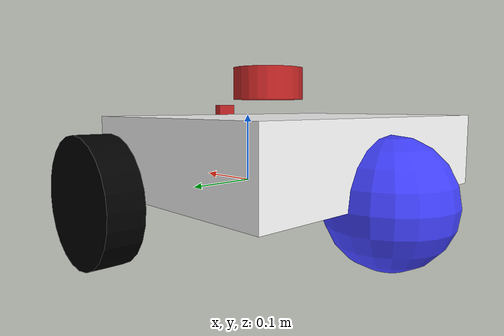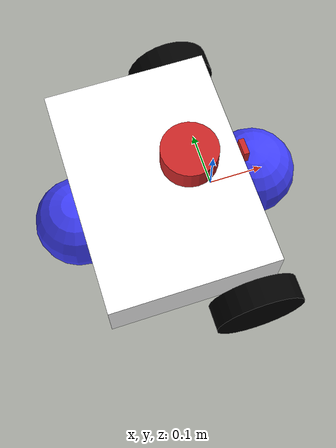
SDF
<sdf version='1.11'>
  <model name='robot'>
    <link name='botwheel'>
      <inertial>
        <pose>-0.089285714285714288 0 0.054047619047619053 0 0 0</pose>
        <mass>1.05</mass>
        <inertia>
          <ixx>0.01350925595238095</ixx>
          <ixy>0</ixy>
          <ixz>-0.00058821428571428479</ixz>
          <iyy>0.014536011904761909</iyy>
          <iyz>0</iyz>
          <izz>0.02150717261904762</izz>
        </inertia>
      </inertial>
      <collision name='botwheel_fixed_joint_lump__chassis_collision'>
        <pose>-0.099999999999999992 0 0.050000000000000003 0 0 0</pose>
        <geometry>
          <box>
            <size>0.29999999999999999 0.41499999999999998 0.10000000000000001</size>
          </box>
        </geometry>
      </collision>
      <collision name='botwheel_fixed_joint_lump__caster_wheel_collision_1'>
        <pose>-0.25 0 0 0 0 0</pose>
        <geometry>
          <sphere>
            <radius>0.080000000000000002</radius>
          </sphere>
        </geometry>
        <surface>
          <contact>
            <ode/>
          </contact>
          <friction>
            <ode>
              <mu>0.0001</mu>
              <mu2>0.0001</mu2>
            </ode>
          </friction>
        </surface>
      </collision>
      <collision name='botwheel_fixed_joint_lump__caster_wheel2_collision_2'>
        <pose>0.080000000000000002 0 0 0 0 0</pose>
        <geometry>
          <sphere>
            <radius>0.080000000000000002</radius>
          </sphere>
        </geometry>
        <surface>
          <contact>
            <ode/>
          </contact>
          <friction>
            <ode>
              <mu>0.0001</mu>
              <mu2>0.0001</mu2>
            </ode>
          </friction>
        </surface>
      </collision>
      <collision name='botwheel_fixed_joint_lump__laser_frame_collision_3'>
        <pose>-0.044999999999999998 0 0.14499999999999999 0 0 0</pose>
        <geometry>
          <cylinder>
            <length>0.044999999999999998</length>
            <radius>0.080000000000000002</radius>
          </cylinder>
        </geometry>
        <surface>
          <contact>
            <ode/>
          </contact>
          <friction>
            <ode/>
          </friction>
        </surface>
      </collision>
      <visual name='botwheel_fixed_joint_lump__chassis_visual'>
        <pose>-0.099999999999999992 0 0.050000000000000003 0 0 0</pose>
        <geometry>
          <box>
            <size>0.29999999999999999 0.41499999999999998 0.10000000000000001</size>
          </box>
        </geometry>
        <material>
          <diffuse>1 1 1 1</diffuse>
          <ambient>1 1 1 1</ambient>
        </material>
      </visual>
      <visual name='botwheel_fixed_joint_lump__camera_link_visual_1'>
        <pose>0.055 0 0.10000000000000001 0 0 0</pose>
        <geometry>
          <box>
            <size>0.01 0.029999999999999999 0.029999999999999999</size>
          </box>
        </geometry>
        <material>
          <script>
            <name>Gazebo/Red</name>
            <uri>file://media/materials/scripts/gazebo.material</uri>
          </script>
          <diffuse>1 0 0 1</diffuse>
          <ambient>1 0 0 1</ambient>
        </material>
      </visual>
      <visual name='botwheel_fixed_joint_lump__caster_wheel_visual_2'>
        <pose>-0.25 0 0 0 0 0</pose>
        <geometry>
          <sphere>
            <radius>0.080000000000000002</radius>
          </sphere>
        </geometry>
        <material>
          <diffuse>0.25 0.25 1 1</diffuse>
          <ambient>0.25 0.25 1 1</ambient>
        </material>
      </visual>
      <visual name='botwheel_fixed_joint_lump__caster_wheel2_visual_3'>
        <pose>0.080000000000000002 0 0 0 0 0</pose>
        <geometry>
          <sphere>
            <radius>0.080000000000000002</radius>
          </sphere>
        </geometry>
        <material>
          <diffuse>0.25 0.25 1 1</diffuse>
          <ambient>0.25 0.25 1 1</ambient>
        </material>
      </visual>
      <visual name='botwheel_fixed_joint_lump__laser_frame_visual_4'>
        <pose>-0.044999999999999998 0 0.14499999999999999 0 0 0</pose>
        <geometry>
          <cylinder>
            <length>0.044999999999999998</length>
            <radius>0.050000000000000003</radius>
          </cylinder>
        </geometry>
        <material>
          <script>
            <name>Gazebo/Red</name>
            <uri>file://media/materials/scripts/gazebo.material</uri>
          </script>
          <diffuse>1 0 0 1</diffuse>
          <ambient>1 0 0 1</ambient>
        </material>
      </visual>
      <sensor name='rgbd_camera' type='rgbd_camera'>
        <visualize>true</visualize>
        <update_rate>30</update_rate>
        <enable_metrics>true</enable_metrics>
        <camera>
          <horizontal_fov>1.089</horizontal_fov>
          <image>
            <format>R8G8B8</format>
            <width>640</width>
            <height>480</height>
          </image>
          <clip>
            <near>0.050000000000000003</near>
            <far>8</far>
          </clip>
        </camera>
        <topic>rgbd_camera</topic>
        <pose>0.055 0 0.10000000000000001 0 0 0</pose>
      </sensor>
      <sensor name='laser' type='gpu_lidar'>
        <topic>lidar</topic>
        <visualize>true</visualize>
        <update_rate>10</update_rate>
        <always_on>true</always_on>
        <ray>
          <scan>
            <horizontal>
              <samples>360</samples>
              <resolution>1</resolution>
              <min_angle>-3.1400000000000001</min_angle>
              <max_angle>3.1400000000000001</max_angle>
            </horizontal>
          </scan>
          <range>
            <min>0.29999999999999999</min>
            <max>12</max>
            <resolution>0.01</resolution>
          </range>
        </ray>
        <pose>-0.044999999999999998 0 0.14499999999999999 0 0 0</pose>
      </sensor>
    </link>
    <joint name='left_wheel_joint' type='revolute'>
      <pose relative_to='botwheel'>0 0.24249999999999999 0 -1.5707963267948959 0 0</pose>
      <parent>botwheel</parent>
      <child>left_wheel</child>
      <axis>
        <xyz>0 0 1</xyz>
        <limit>
          <lower>-inf</lower>
          <upper>inf</upper>
        </limit>
        <dynamics>
          <spring_reference>0</spring_reference>
          <spring_stiffness>0</spring_stiffness>
        </dynamics>
      </axis>
    </joint>
    <link name='left_wheel'>
      <pose relative_to='left_wheel_joint'>0 0 0 0 0 0</pose>
      <inertial>
        <pose>0 0 0 0 0 0</pose>
        <mass>0.14999999999999999</mass>
        <inertia>
          <ixx>0.00011375</ixx>
          <ixy>0</ixy>
          <ixz>0</ixz>
          <iyy>0.00011375</iyy>
          <iyz>0</iyz>
          <izz>0.0001875</izz>
        </inertia>
      </inertial>
      <collision name='left_wheel_collision'>
        <pose>0 0 0 0 0 0</pose>
        <geometry>
          <cylinder>
            <length>0.044999999999999998</length>
            <radius>0.080000000000000002</radius>
          </cylinder>
        </geometry>
      </collision>
      <visual name='left_wheel_visual'>
        <pose>0 0 0 0 0 0</pose>
        <geometry>
          <cylinder>
            <length>0.044999999999999998</length>
            <radius>0.080000000000000002</radius>
          </cylinder>
        </geometry>
        <material>
          <diffuse>0 0 0 1</diffuse>
          <ambient>0 0 0 1</ambient>
        </material>
      </visual>
    </link>
    <joint name='right_wheel_joint' type='revolute'>
      <pose relative_to='botwheel'>0 -0.24249999999999999 0 1.5707963267948959 0 0</pose>
      <parent>botwheel</parent>
      <child>right_wheel</child>
      <axis>
        <xyz>0 0 -1</xyz>
        <limit>
          <lower>-inf</lower>
          <upper>inf</upper>
        </limit>
        <dynamics>
          <spring_reference>0</spring_reference>
          <spring_stiffness>0</spring_stiffness>
        </dynamics>
      </axis>
    </joint>
    <link name='right_wheel'>
      <pose relative_to='right_wheel_joint'>0 0 0 0 0 0</pose>
      <inertial>
        <pose>0 0 0 0 0 0</pose>
        <mass>0.14999999999999999</mass>
        <inertia>
          <ixx>0.00011375</ixx>
          <ixy>0</ixy>
          <ixz>0</ixz>
          <iyy>0.00011375</iyy>
          <iyz>0</iyz>
          <izz>0.0001875</izz>
        </inertia>
      </inertial>
      <collision name='right_wheel_collision'>
        <pose>0 0 0 0 0 0</pose>
        <geometry>
          <cylinder>
            <length>0.044999999999999998</length>
            <radius>0.080000000000000002</radius>
          </cylinder>
        </geometry>
      </collision>
      <visual name='right_wheel_visual'>
        <pose>0 0 0 0 0 0</pose>
        <geometry>
          <cylinder>
            <length>0.044999999999999998</length>
            <radius>0.080000000000000002</radius>
          </cylinder>
        </geometry>
        <material>
          <diffuse>0 0 0 1</diffuse>
          <ambient>0 0 0 1</ambient>
        </material>
      </visual>
    </link>
    <plugin name='gz::sim::systems::DiffDrive' filename='gz-sim-diff-drive-system'>
      <alwaysOn>true</alwaysOn>
      <left_joint>left_wheel_joint</left_joint>
      <right_joint>right_wheel_joint</right_joint>
      <wheel_separation>0.4850</wheel_separation>
      <wheel_diameter>0.1</wheel_diameter>
      <max_wheel_torque>200</max_wheel_torque>
      <max_wheel_acceleration>10.0</max_wheel_acceleration>
      <topic>cmd_vel</topic>
      <robotBaseFrame>base_link</robotBaseFrame>
      <odom_publish_frequency>1</odom_publish_frequency>
      <publish_odom>true</publish_odom>
      <publish_odom_tf>true</publish_odom_tf>
      <publish_wheel_tf>true</publish_wheel_tf>
    </plugin>
    <plugin name='gz::sim::systems::TriggeredPublisher' filename='gz-sim-triggered-publisher-system'>
      <input topic='/keyboard/keypress' type='gz.msgs.Int32'>
        <match field='data'>16777235</match>
      </input>
      <output topic='/cmd_vel' type='gz.msgs.Twist'>linear: {x: 3}, angular: {z: 0.0}</output>
    </plugin>
    <plugin name='gz::sim::systems::TriggeredPublisher' filename='gz-sim-triggered-publisher-system'>
      <input topic='/keyboard/keypress' type='gz.msgs.Int32'>
        <match field='data'>16777237</match>
      </input>
      <output topic='/cmd_vel' type='gz.msgs.Twist'>linear: {x: -3}, angular: {z: 0.0}</output>
    </plugin>
    <plugin name='gz::sim::systems::TriggeredPublisher' filename='gz-sim-triggered-publisher-system'>
      <input topic='/keyboard/keypress' type='gz.msgs.Int32'>
        <match field='data'>16777234</match>
      </input>
      <output topic='/cmd_vel' type='gz.msgs.Twist'>linear: {x: 0.0}, angular: {z: 5}</output>
    </plugin>
    <plugin name='gz::sim::systems::TriggeredPublisher' filename='gz-sim-triggered-publisher-system'>
      <input topic='/keyboard/keypress' type='gz.msgs.Int32'>
        <match field='data'>16777236</match>
      </input>
      <output topic='/cmd_vel' type='gz.msgs.Twist'>linear: {x: 0.0}, angular: {z: -5}</output>
    </plugin>
    <plugin name='gz::sim::systems::JointStatePublisher' filename='gz-sim-joint-state-publisher-system'/>
    <plugin name='gz::sim::systems::PosePublisher' filename='gz-sim-pose-publisher-system'>
      <static_publisher>true</static_publisher>
      <static_update_frequency>1</static_update_frequency>
    </plugin>
    <plugin name='gz::sim::systems::OdometryPublisher' filename='gz-sim-odometry-publisher-system'>
      <odom_frame>odom</odom_frame>
      <robot_base_frame>botwheel</robot_base_frame>
    </plugin>
    <frame name='camera_optical_joint' attached_to='camera_link'>
      <pose>0 0 0 -1.5707963267948959 -5.5511151231257827e-17 -1.5707963267948959</pose>
    </frame>
    <frame name='camera_link_optical' attached_to='camera_optical_joint'>
      <pose>0 0 0 0 0 0</pose>
    </frame>
    <frame name='camera_joint' attached_to='chassis'>
      <pose>0.0050000000000000001 0 0.10000000000000001 0 0 0</pose>
    </frame>
    <frame name='camera_link' attached_to='camera_joint'>
      <pose>0 0 0 0 0 0</pose>
    </frame>
    <frame name='caster_wheel_joint' attached_to='chassis'>
      <pose>-0.29999999999999999 0 0 0 0 0</pose>
    </frame>
    <frame name='caster_wheel' attached_to='caster_wheel_joint'>
      <pose>0 0 0 0 0 0</pose>
    </frame>
    <frame name='caster_wheel_joint2' attached_to='chassis'>
      <pose>0.029999999999999999 0 0 0 0 0</pose>
    </frame>
    <frame name='caster_wheel2' attached_to='caster_wheel_joint2'>
      <pose>0 0 0 0 0 0</pose>
    </frame>
    <frame name='laser_joint' attached_to='chassis'>
      <pose>-0.095000000000000001 0 0.14499999999999999 0 0 0</pose>
    </frame>
    <frame name='laser_frame' attached_to='laser_joint'>
      <pose>0 0 0 0 0 0</pose>
    </frame>
    <frame name='chassis_joint' attached_to='botwheel'>
      <pose>0.050000000000000003 0 0 0 0 0</pose>
    </frame>
    <frame name='chassis' attached_to='chassis_joint'>
      <pose>0 0 0 0 0 0</pose>
    </frame>
  </model>
</sdf>
